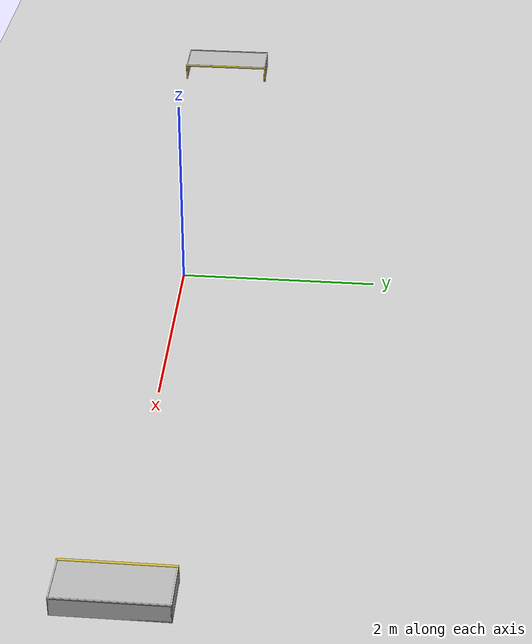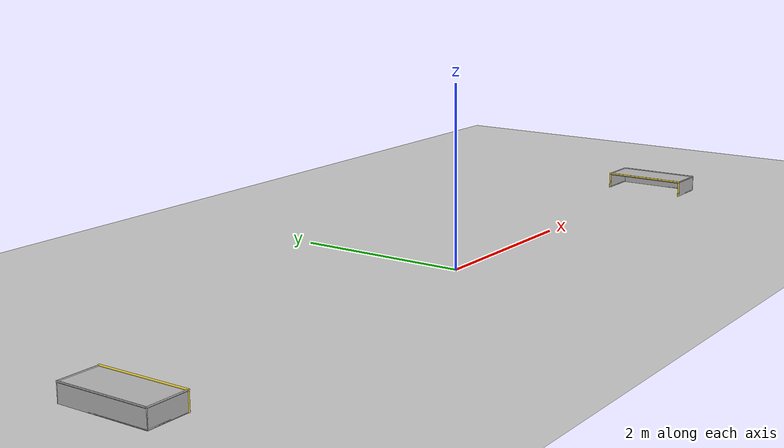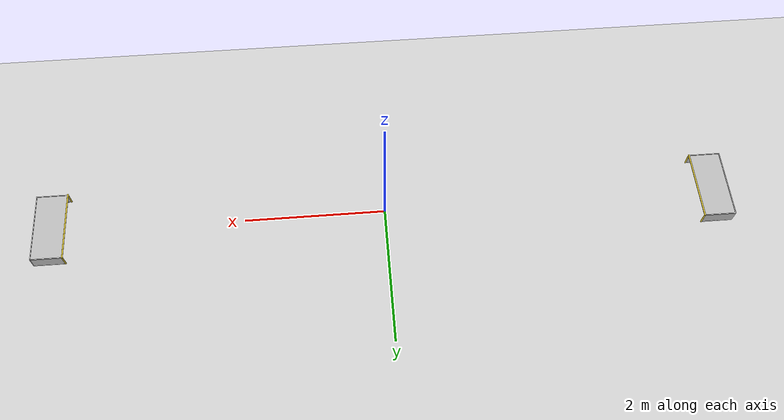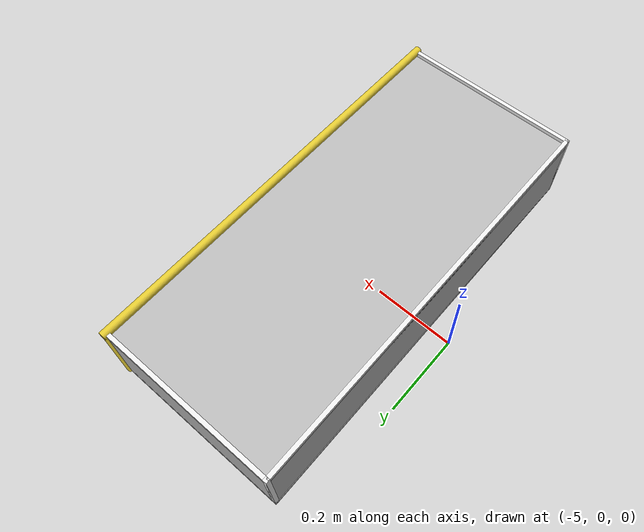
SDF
<sdf version="1.4">
 <world name="default">
  <plugin name="ros_link_attacher_plugin" filename="libgazebo_ros_link_attacher.so"/>
  <plugin name="follow_object" filename="libfollow_object.so"/>
  <plugin name="move_to_coord" filename="libmove_to_coord.so"/>
  <plugin name="goal_out_detection" filename="libgoal_out_detection.so"/>
  <plugin name="game_plugin" filename="libgame_plugin.so"/>
  <plugin name="find_distance" filename="libfind_distance.so"/>
  <include><uri>model://ground_plane</uri></include>
  <include><uri>model://sun</uri></include>
  <include>
   <pose>-4.5 0 0 0 0 3.1416</pose>
   <uri>model://robocup_ssl_goal</uri>
   <name>robocup_ssl_left_goal</name>
  </include>
  <include>
   <pose>4.5 0 0 0 0 0</pose>
   <uri>model://robocup_ssl_goal</uri>
   <name>robocup_ssl_right_goal</name>
  </include>
  <include>
   <uri>model://robocup_ssl_ball</uri>
   <name>ball</name>
   <plugin name="ball_controller" filename="libball_controller.so"/>
  </include>
 </world>
</sdf>

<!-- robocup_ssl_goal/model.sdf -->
<sdf version="1.5">
  <model name="RoboCup SSL Goal">
    <static>true</static>
    <link name="left_post">
      <pose>0 0.5 0.09 0 0 0</pose>
      <collision name="collision">
        <geometry>
          <cylinder>
            <radius>0.01</radius>
            <length>0.18</length>
          </cylinder>
        </geometry>
      </collision>
      <visual name="visual">
        <geometry>
          <cylinder>
            <radius>0.01</radius>
            <length>0.18</length>
          </cylinder>
        </geometry>
        <material>
          <script>
            <uri>file://media/materials/scripts/gazebo.material</uri>
            <name>Gazebo/ZincYellow</name>
          </script>
        </material>
      </visual>
    </link>
    <link name="left_support_horiz_lower">
      <pose>0.22 0.5 0.01 0 0 0</pose>
      <collision name="collision">
        <geometry>
          <box>
            <size>0.45 0.01 0.01</size>
          </box>
        </geometry>
      </collision>
      <visual name="visual">
        <geometry>
          <box>
            <size>0.45 0.01 0.01</size>
          </box>
        </geometry>
        <material>
          <script>
            <uri>file://media/materials/scripts/gazebo.material</uri>
            <name>Gazebo/White</name>
          </script>
        </material>
      </visual>
    </link>
    <link name="left_support_horiz_upper">
      <pose>0.22 0.5 0.19 0 0 0</pose>
      <collision name="collision">
        <geometry>
          <box>
            <size>0.45 0.01 0.01</size>
          </box>
        </geometry>
      </collision>
      <visual name="visual">
        <geometry>
          <box>
            <size>0.45 0.01 0.01</size>
          </box>
        </geometry>
        <material>
          <script>
            <uri>file://media/materials/scripts/gazebo.material</uri>
            <name>Gazebo/White</name>
          </script>
        </material>
      </visual>
    </link>
    <link name="left_support_vertical">
      <pose>0.44 0.5 0.1 0 1.5708 0</pose>
      <collision name="collision">
        <geometry>
          <box>
            <size>0.19 0.01 0.01</size>
          </box>
        </geometry>
      </collision>
      <visual name="visual">
        <geometry>
          <box>
            <size>0.19 0.01 0.01</size>
          </box>
        </geometry>
        <material>
          <script>
            <uri>file://media/materials/scripts/gazebo.material</uri>
            <name>Gazebo/White</name>
          </script>
        </material>
      </visual>
    </link>
    <link name="right_support_horiz_lower">
      <pose>0.22 -0.5 0.01 0 0 0</pose>
      <collision name="collision">
        <geometry>
          <box>
            <size>0.45 0.01 0.01</size>
          </box>
        </geometry>
      </collision>
      <visual name="visual">
        <geometry>
          <box>
            <size>0.45 0.01 0.01</size>
          </box>
        </geometry>
        <material>
          <script>
            <uri>file://media/materials/scripts/gazebo.material</uri>
            <name>Gazebo/White</name>
          </script>
        </material>
      </visual>
    </link>
    <link name="right_support_horiz_upper">
      <pose>0.22 -0.5 0.19 0 0 0</pose>
      <collision name="collision">
        <geometry>
          <box>
            <size>0.45 0.01 0.01</size>
          </box>
        </geometry>
      </collision>
      <visual name="visual">
        <geometry>
          <box>
            <size>0.45 0.01 0.01</size>
          </box>
        </geometry>
        <material>
          <script>
            <uri>file://media/materials/scripts/gazebo.material</uri>
            <name>Gazebo/White</name>
          </script>
        </material>
      </visual>
    </link>
    <link name="right_support_vertical">
      <pose>0.44 -0.5 0.1 0 1.5708 0</pose>
      <collision name="collision">
        <geometry>
          <box>
            <size>0.19 0.01 0.01</size>
          </box>
        </geometry>
      </collision>
      <visual name="visual">
        <geometry>
          <box>
            <size>0.19 0.01 0.01</size>
          </box>
        </geometry>
        <material>
          <script>
            <uri>file://media/materials/scripts/gazebo.material</uri>
            <name>Gazebo/White</name>
          </script>
        </material>
      </visual>
    </link>
    <link name="center_support_horiz_lower">
      <pose>0.44 0 0.01 0 1.5708 0</pose>
      <collision name="collision">
        <geometry>
          <box>
            <size>0.01 1 0.01</size>
          </box>
        </geometry>
      </collision>
      <visual name="visual">
        <geometry>
          <box>
            <size>0.01 1 0.01</size>
          </box>
        </geometry>
        <material>
          <script>
            <uri>file://media/materials/scripts/gazebo.material</uri>
            <name>Gazebo/White</name>
          </script>
        </material>
      </visual>
    </link>
    <link name="center_support_horiz_upper">
      <pose>0.44 0 0.19 0 1.5708 0</pose>
      <collision name="collision">
        <geometry>
          <box>
            <size>0.01 1 0.01</size>
          </box>
        </geometry>
      </collision>
      <visual name="visual">
        <geometry>
          <box>
            <size>0.01 1 0.01</size>
          </box>
        </geometry>
        <material>
          <script>
            <uri>file://media/materials/scripts/gazebo.material</uri>
            <name>Gazebo/White</name>
          </script>
        </material>
      </visual>
    </link>
    <link name="right_post">
      <pose>0 -0.5 0.09 0 0 0</pose>
      <collision name="collision">
        <geometry>
          <cylinder>
            <radius>0.01</radius>
            <length>0.18</length>
          </cylinder>
        </geometry>
      </collision>
      <visual name="visual">
        <geometry>
          <cylinder>
            <radius>0.01</radius>
            <length>0.18</length>
          </cylinder>
        </geometry>
        <material>
          <script>
            <uri>file://media/materials/scripts/gazebo.material</uri>
            <name>Gazebo/ZincYellow</name>
          </script>
        </material>
      </visual>
    </link>
    <link name="crossbar">
      <pose>0 0 0.19 1.57 1.57 0</pose>
      <collision name="collision">
        <geometry>
          <cylinder>
            <radius>0.01</radius>
            <length>1.02</length>
          </cylinder>
        </geometry>
      </collision>
      <visual name="visual">
        <geometry>
          <cylinder>
            <radius>0.01</radius>
            <length>1.02</length>
          </cylinder>
        </geometry>
        <material>
          <script>
            <uri>file://media/materials/scripts/gazebo.material</uri>
            <name>Gazebo/ZincYellow</name>
          </script>
        </material>
      </visual>
    </link>
    <link name="center_net">
      <pose>0.44 0 0.09 0 0 0</pose>
      <collision name="collision">
        <geometry>
          <box>
            <size>0.01 1 0.18</size>
          </box>
        </geometry>
      </collision>
      <visual name="visual">
        <geometry>
          <box>
            <size>0.01 1 0.18</size>
          </box>
        </geometry>
        <material>
          <script>
            <uri>model://robocup09_spl_field/materials/scripts/</uri>
            <uri>model://robocup09_spl_field/materials/textures/</uri>
            <name>RoboCup/Net</name>
          </script>
        </material>
      </visual>
    </link>
    <link name="left_net">
      <pose>0.22 0.5 0.09 0 0 0</pose>
      <collision name="collision">
        <geometry>
          <box>
            <size>0.45 0.01 0.18</size>
          </box>
        </geometry>
      </collision>
      <visual name="visual">
        <geometry>
          <box>
            <size>0.45 0.01 0.18</size>
          </box>
        </geometry>
        <material>
          <script>
            <uri>model://robocup09_spl_field/materials/scripts/</uri>
            <uri>model://robocup09_spl_field/materials/textures/</uri>
            <name>RoboCup/Net</name>
          </script>
        </material>
      </visual>
    </link>
    <link name="right_net">
      <pose>0.22 -0.5 0.09 0 0 0</pose>
      <collision name="collision">
        <geometry>
          <box>
            <size>0.45 0.01 0.18</size>
          </box>
        </geometry>
      </collision>
      <visual name="visual">
        <geometry>
          <box>
            <size>0.45 0.01 0.18</size>
          </box>
        </geometry>
        <material>
          <script>
            <uri>model://robocup09_spl_field/materials/scripts/</uri>
            <uri>model://robocup09_spl_field/materials/textures/</uri>
            <name>RoboCup/Net</name>
          </script>
        </material>
      </visual>
    </link>
    <link name="upper_net">
      <pose>0.22 0 0.18 0 0 0</pose>
      <collision name="collision">
        <geometry>
          <box>
            <size>0.45 1 0.01</size>
          </box>
        </geometry>
      </collision>
      <visual name="visual">
        <geometry>
          <box>
            <size>0.45 1 0.01</size>
          </box>
        </geometry>
        <material>
          <script>
            <uri>model://robocup09_spl_field/materials/scripts/</uri>
            <uri>model://robocup09_spl_field/materials/textures/</uri>
            <name>RoboCup/Net</name>
          </script>
        </material>
      </visual>
    </link>
  </model>
</sdf>

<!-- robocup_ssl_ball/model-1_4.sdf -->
<sdf version="1.4">
  <model name="RoboCup SSL Ball">
    <static>false</static>

    <link name="ball">
      <inertial>
        <mass>0.046</mass>
        <!-- inertia based on solid sphere 2/5 mr^2 -->
        <inertia>
          <ixx>2.37e-6</ixx>
          <iyy>2.37e-6</iyy>
          <izz>2.37e-6</izz>
          <ixy>0</ixy>
          <ixz>0</ixz>
          <iyz>0</iyz>
        </inertia>
      </inertial>
      <collision name="collision">
        <geometry>
          <sphere>
            <radius>0.0215</radius>
          </sphere>
        </geometry>
      </collision>
      <visual name="visual">
        <geometry>
          <sphere>
            <radius>0.0215</radius>
          </sphere>
        </geometry>
        <material>
          <script>
            <uri>file://media/materials/scripts/gazebo.material</uri>
            <name>Gazebo/Orange</name>
          </script>
        </material>
      </visual>
    </link>

  </model>
</sdf>
